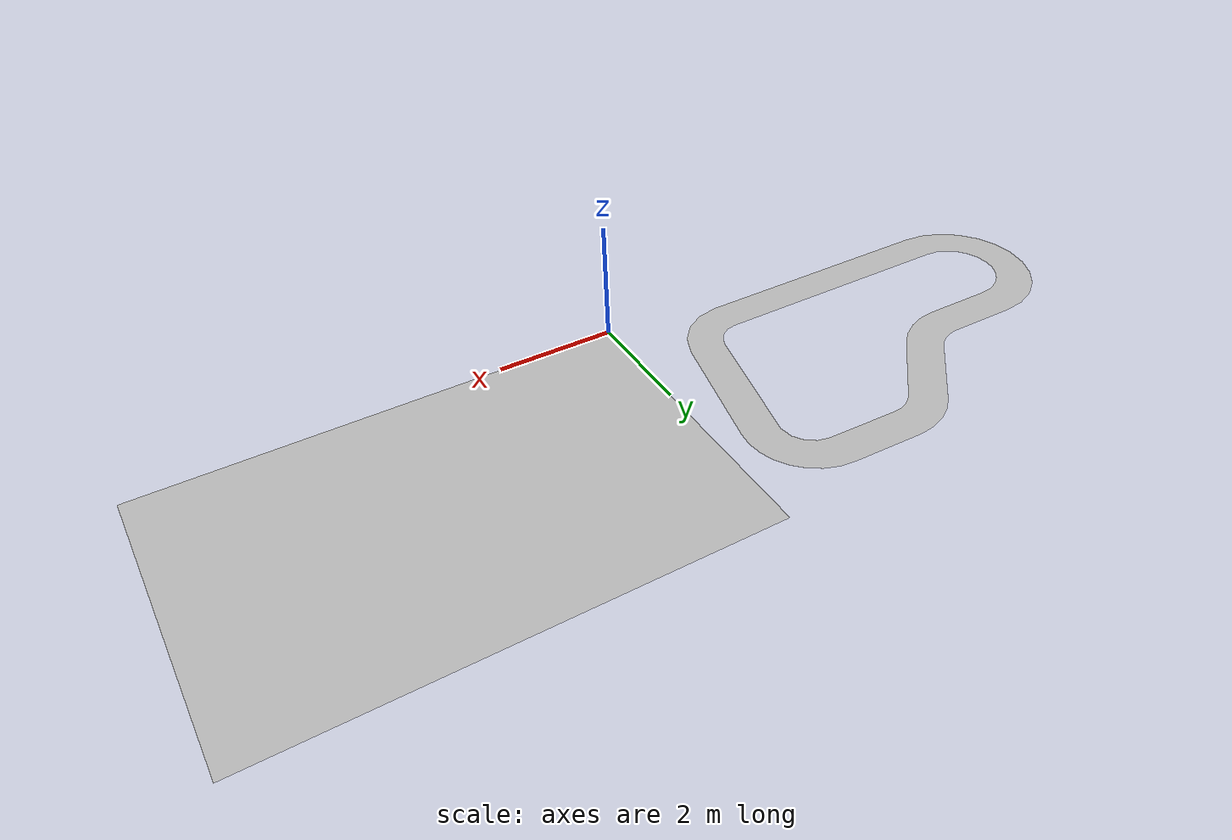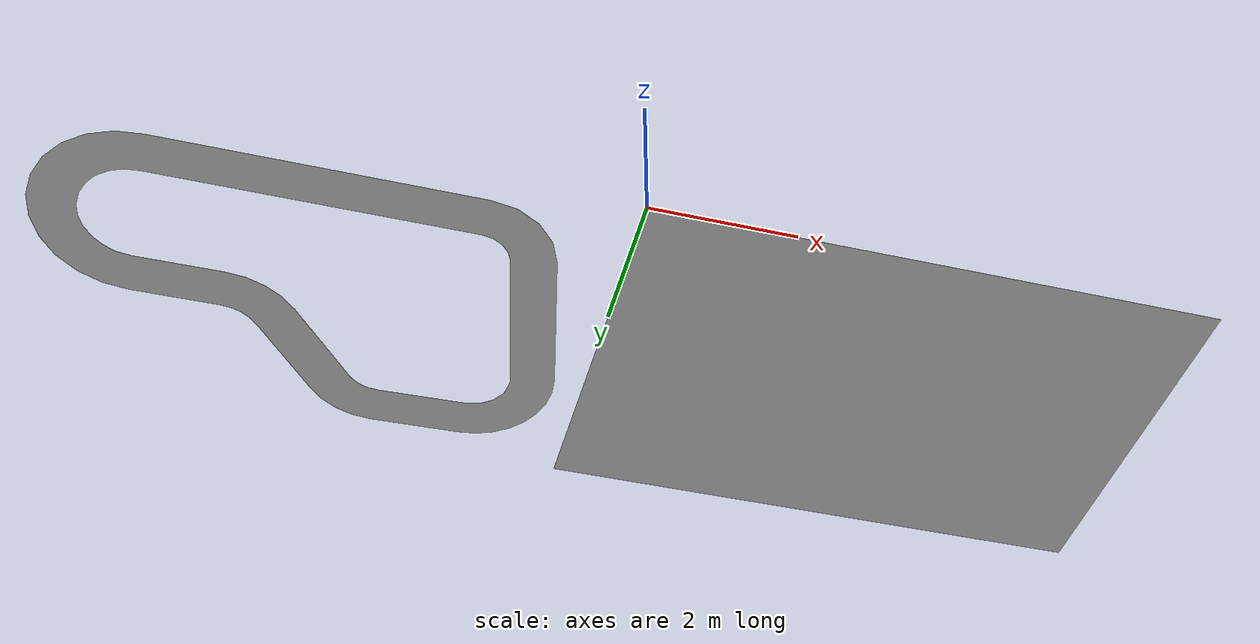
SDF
<?xml version='1.0'?>
<sdf version='1.4'>
  <model name="carpet_carpet">
    <link name="fieldLink">
      <collision name="collision">
        <pose>0 0 0 0 0 0</pose>
        <geometry>
          <mesh>
            <uri>model://meshes/reinvent/field_carpet.dae</uri>
          </mesh>
        </geometry>
      </collision>
      <visual name="visual">
        <pose>0 0 0 0 0 0</pose>
        <geometry>
          <mesh>
            <uri>model://meshes/reinvent/field_carpet.dae</uri>
          </mesh>
        </geometry>
      </visual>
    </link>
    <link name="roadLink">
      <collision name="collision">
        <pose>0 0 0.0 0 0 0</pose>
        <geometry>
          <mesh>
            <uri>model://meshes/reinvent/road_carpet.dae</uri>
          </mesh>
        </geometry>
      </collision>
      <visual name="visual">
        <pose>0 0 0.0 0 0 0</pose>
        <geometry>
          <mesh>
            <uri>model://meshes/reinvent/road_carpet.dae</uri>
          </mesh>
        </geometry>
      </visual>
    </link>
    <static>1</static>
  </model>
</sdf>
